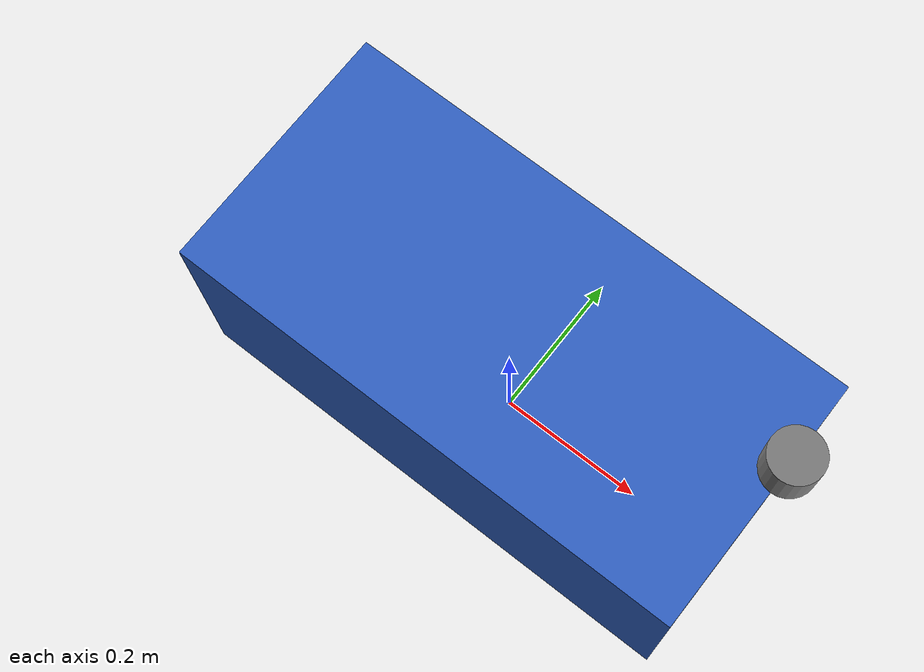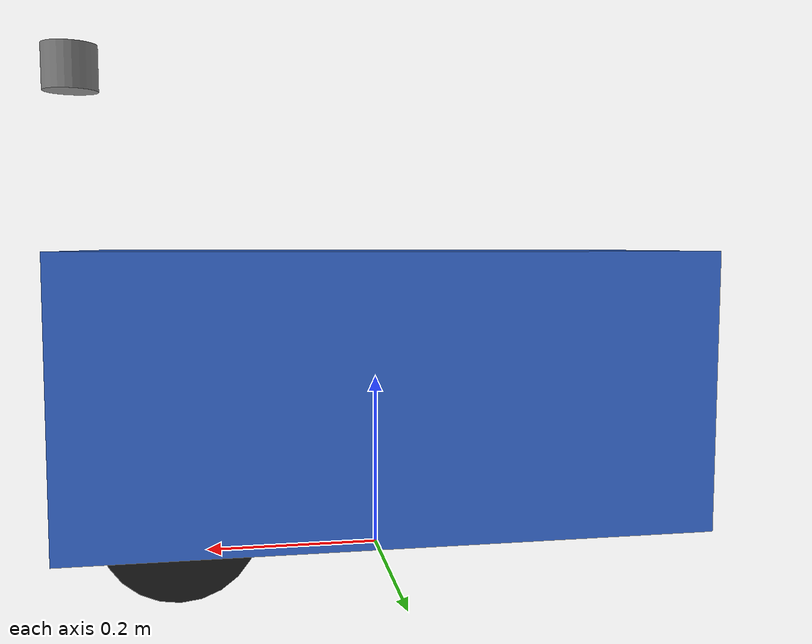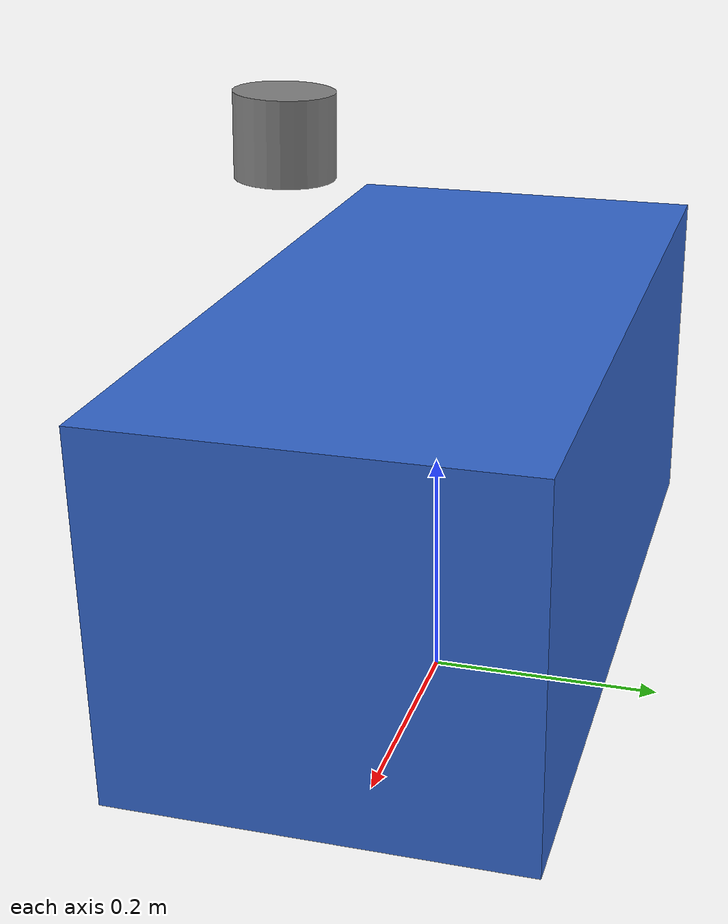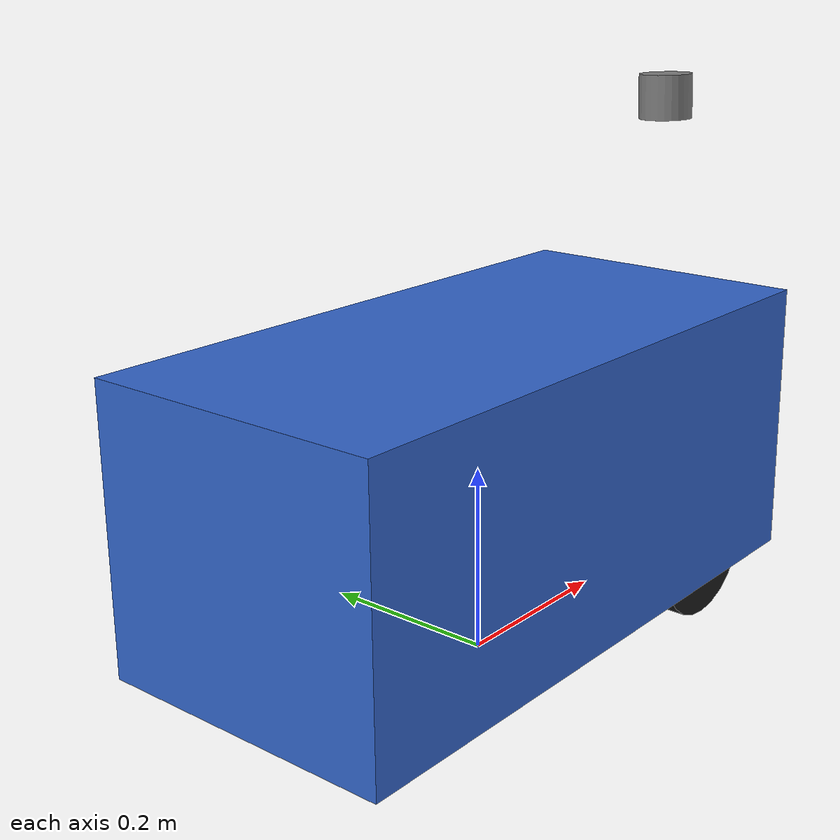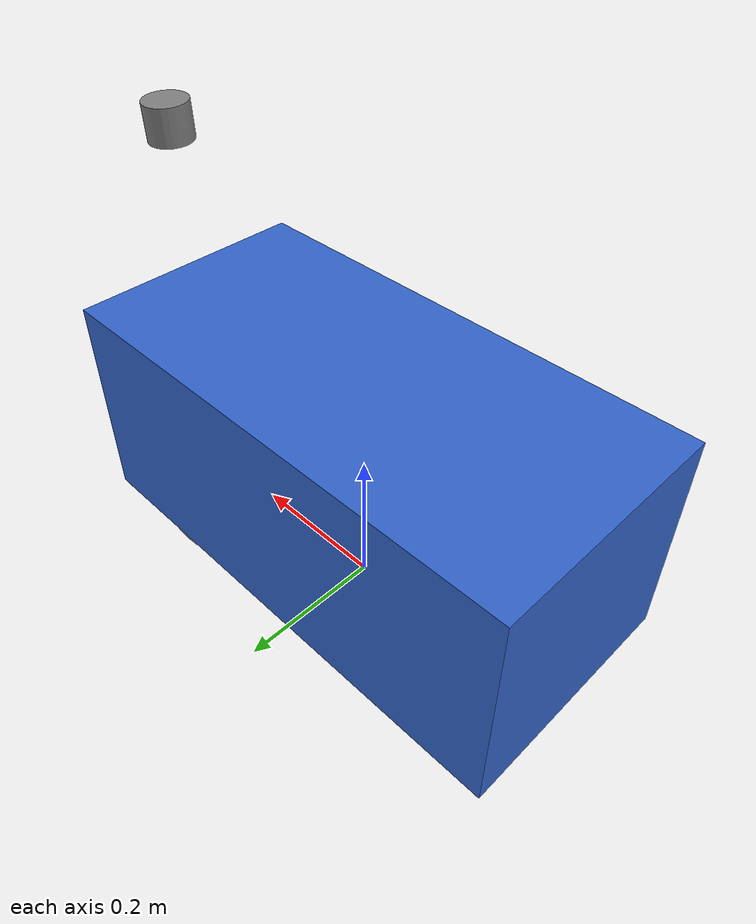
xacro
<?xml version="1.0"?>
<robot name="robotcar" xmlns:xacro="http://www.ros.org/wiki/xacro">

  <!-- ======================== 几何/安装参数 ======================== -->
  <xacro:property name="M_PI" value="3.14159265359"/>

  <!-- 车体尺寸: 长68cm 宽33cm 高30cm -->
  <xacro:property name="vehicle_length" value="0.68"/>
  <xacro:property name="vehicle_width"  value="0.33"/>
  <xacro:property name="vehicle_height" value="0.30"/>
  <xacro:property name="ground_clearance" value="0.05"/>

  <!-- 车体几何中心离地高度 -->
  <xacro:property name="base_box_z" value="${vehicle_height}"/>
  <!-- base_link 在几何中心 -->
  <xacro:property name="base_link_z_offset" value="${ground_clearance + vehicle_height/2}"/>

  <!-- 轮子参数 -->
  <xacro:property name="wheel_radius" value="0.08"/>
  <xacro:property name="wheel_length" value="0.03"/>
  <xacro:property name="caster_radius" value="0.04"/>

  <!-- 轮距参数 -->
  <!-- 轮子边缘外切线距离前后4cm -->
  <!-- 半车长 0.34 - 间隙 0.04 - 轮半径 0.08 = 0.22 -->
  <xacro:property name="wheelbase_half" value="0.22"/>
  <!-- 左右轮距离 26cm -> 半轮距 0.13 -->
  <xacro:property name="track_half" value="0.13"/>
  <!-- 轮子分离距离 (用于ros2_control) -->
  <xacro:property name="wheel_separation" value="0.26"/>

  <!-- 轮子垂直位置: 假设轮轴在离地 wheel_radius 高度 -->
  <!-- base_link 高度是 ground_clearance + height/2 = 0.05 + 0.15 = 0.20 -->
  <!-- 轮子 z 坐标相对 base_link: wheel_radius - base_link_height -->
  <xacro:property name="wheel_z_offset" value="${wheel_radius - base_link_z_offset}"/>

  <!-- 雷达: Mid-360, 正前方宽边的棱 (前上边缘) -->
  <!-- x = length/2 = 0.34 -->
  <!-- z = height/2 = 0.15 -->
  <xacro:property name="lidar_x" value="0.34"/>
  <xacro:property name="lidar_y" value="0.0"/>
  <xacro:property name="lidar_z" value="0.35"/>
  <!-- 雷达绕Y轴向下旋转45度 - 数据已被 tilt_compensator 摆平，TF 中设为 0 -->
  <xacro:property name="lidar_pitch" value="0.0"/>

  <!-- ======================== 宏定义 ======================== -->
  <xacro:macro name="wheel_link" params="name parent_link x_offset y_offset z_offset">
    <link name="${name}_wheel_link">
      <visual>
        <origin xyz="0 0 0" rpy="${M_PI/2} 0 0"/>
        <geometry>
          <cylinder length="${wheel_length}" radius="${wheel_radius}"/>
        </geometry>
        <material name="black">
            <color rgba="0.1 0.1 0.1 1.0"/>
        </material>
      </visual>
      <collision>
        <origin xyz="0 0 0" rpy="${M_PI/2} 0 0"/>
        <geometry>
          <cylinder length="${wheel_length}" radius="${wheel_radius}"/>
        </geometry>
      </collision>
      <inertial>
        <origin xyz="0 0 0" rpy="0 0 0"/>
        <mass value="0.5"/>
        <inertia ixx="${0.5*(3*wheel_radius*wheel_radius + wheel_length*wheel_length)/12}"
                 ixy="0" ixz="0"
                 iyy="${0.5*(3*wheel_radius*wheel_radius + wheel_length*wheel_length)/12}"
                 iyz="0"
                 izz="${0.5*wheel_radius*wheel_radius/2}"/>
      </inertial>
    </link>

    <joint name="${name}_wheel_joint" type="continuous">
      <parent link="${parent_link}"/>
      <child  link="${name}_wheel_link"/>
      <origin xyz="${x_offset} ${y_offset} ${z_offset}" rpy="0 0 0"/>
      <axis xyz="0 1 0"/>
    </joint>
  </xacro:macro>

  <!-- ======================== 机器人结构 ======================== -->
  <link name="base_footprint"/>

  <joint name="base_joint" type="fixed">
    <parent link="base_footprint"/>
    <child  link="base_link"/>
    <origin xyz="0 0 ${base_link_z_offset}" rpy="0 0 0"/>
  </joint>

  <link name="base_link">
    <visual>
      <origin xyz="0 0 0" rpy="0 0 0"/>
      <geometry>
        <box size="${vehicle_length} ${vehicle_width} ${vehicle_height}"/>
      </geometry>
      <material name="blue">
        <color rgba="0.2 0.4 0.8 1.0"/>
      </material>
    </visual>
    <collision>
      <origin xyz="0 0 0" rpy="0 0 0"/>
      <geometry>
        <box size="${vehicle_length} ${vehicle_width} ${vehicle_height}"/>
      </geometry>
    </collision>
    <inertial>
      <mass value="20.0"/>
      <inertia ixx="${(1/12)*20*(vehicle_width*vehicle_width + vehicle_height*vehicle_height)}"
               ixy="0" ixz="0"
               iyy="${(1/12)*20*(vehicle_length*vehicle_length + vehicle_height*vehicle_height)}"
               iyz="0"
               izz="${(1/12)*20*(vehicle_length*vehicle_length + vehicle_width*vehicle_width)}"/>
    </inertial>
  </link>

  <!-- ======================== 轮子 (4个) ======================== -->
  <!-- 左前轮 (驱动轮) -->
  <xacro:wheel_link name="left" parent_link="base_link"
                    x_offset="${wheelbase_half}" y_offset="${track_half}" z_offset="${wheel_z_offset}"/>

  <!-- 右前轮 (驱动轮) -->
  <xacro:wheel_link name="right" parent_link="base_link"
                    x_offset="${wheelbase_half}" y_offset="-${track_half}" z_offset="${wheel_z_offset}"/>

  <!-- ======================== 后置万向轮 ======================== -->
  <link name="rear_caster_link">
    <visual>
      <origin xyz="0 0 0" rpy="0 0 0"/>
      <geometry>
        <sphere radius="${caster_radius}"/>
      </geometry>
      <material name="black"/>
    </visual>
    <collision>
      <origin xyz="0 0 0" rpy="0 0 0"/>
      <geometry>
        <sphere radius="${caster_radius}"/>
      </geometry>
    </collision>
    <inertial>
      <mass value="0.5"/>
      <inertia ixx="0.001" ixy="0" ixz="0" iyy="0.001" iyz="0" izz="0.001"/>
    </inertial>
  </link>

  <joint name="rear_caster_joint" type="fixed">
    <parent link="base_link"/>
    <child link="rear_caster_link"/>
    <origin xyz="-${wheelbase_half} 0 ${caster_radius - base_link_z_offset}" rpy="0 0 0"/>
  </joint>

  <!-- Gazebo simulation: Frictionless caster -->
  <gazebo reference="rear_caster_link">
    <mu1>0.0</mu1>
    <mu2>0.0</mu2>
    <material>Gazebo/Black</material>
  </gazebo>

  <!-- ======================== 传感器 ======================== -->

  <!-- Lidar: Mid-360 -->
  <link name="livox_frame">
    <visual>
      <origin xyz="0 0 0" rpy="0 0 0"/>
      <geometry>
        <cylinder radius="0.03" length="0.05"/>
      </geometry>
      <material name="gray">
        <color rgba="0.5 0.5 0.5 1.0"/>
      </material>
    </visual>
  </link>
  <joint name="livox_joint" type="fixed">
    <parent link="base_link"/>
    <child link="livox_frame"/>
    <!-- Roll=+0.052 (约+3度) 补偿左边向下倾斜,抬起左边 -->
    <origin xyz="${lidar_x} ${lidar_y} ${lidar_z}" rpy="-0.032 ${lidar_pitch} 0"/>
  </joint>

  <!-- IMU: 机体中心 -->
  <link name="imu_link">
    <visual>
      <geometry>
        <box size="0.02 0.02 0.01"/>
      </geometry>
      <material name="green">
        <color rgba="0.0 1.0 0.0 1.0"/>
      </material>
    </visual>
  </link>
  <joint name="imu_joint" type="fixed">
    <parent link="base_link"/>
    <child link="imu_link"/>
    <origin xyz="0 0 0" rpy="0 0 0"/>
  </joint>

  <!-- ======================== ros2_control ======================== -->
  <ros2_control name="RobotCar" type="system">
    <hardware>
      <plugin>robot_base/RobotCarHardwareInterface</plugin>
      <param name="serial_port_name">/dev/STM32</param>
      <param name="serial_baud_rate">115200</param>
      <param name="wheel_radius">${wheel_radius}</param>
      <param name="wheel_separation">${wheel_separation}</param>
      <param name="loop_rate">50</param>
      <param name="device_timeout">1000</param>
      <!-- IMU 参数已移除，由独立节点控制 -->
    </hardware>
    <joint name="left_wheel_joint">
      <command_interface name="velocity">
        <param name="min">-10.0</param>
        <param name="max">10.0</param>
      </command_interface>
      <state_interface name="position"/>
      <state_interface name="velocity"/>
    </joint>
    <joint name="right_wheel_joint">
      <command_interface name="velocity">
        <param name="min">-10.0</param>
        <param name="max">10.0</param>
      </command_interface>
      <state_interface name="position"/>
      <state_interface name="velocity"/>
    </joint>
    <!-- IMU 传感器接口已移除 -->
  </ros2_control>

</robot>
